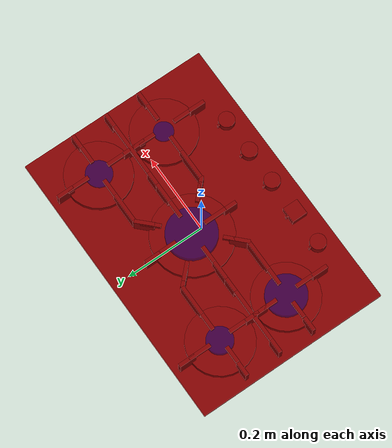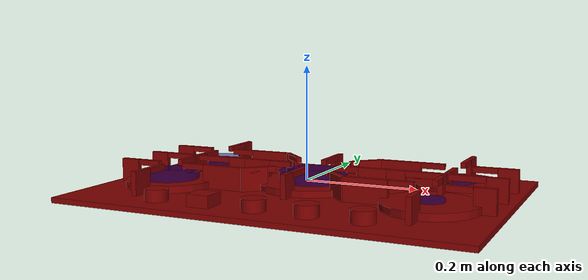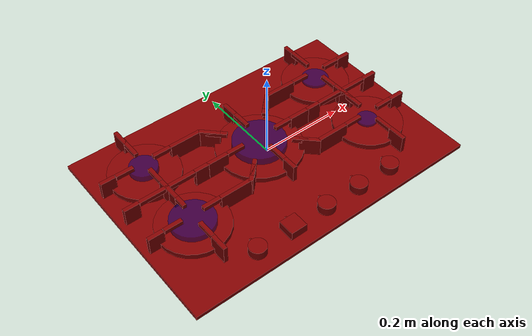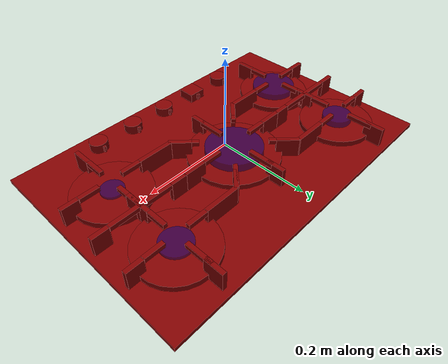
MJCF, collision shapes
<mujoco model="model">
  <compiler angle="radian"/>
  <asset>
    <mesh file="visuals/knob_center.obj" name="knob_center_vis"/>
    <mesh file="visuals/knob_front_left.obj" name="knob_front_left_vis"/>
    <mesh file="visuals/knob_front_right.obj" name="knob_front_right_vis"/>
    <mesh file="visuals/knob_rear_left.obj" name="knob_rear_left_vis"/>
    <mesh file="visuals/knob_rear_right.obj" name="knob_rear_right_vis"/>
    <mesh file="visuals/Body001.obj" name="Body001_vis"/>
    <texture file="visuals/T_BC001.png" name="Body001_material" type="2d"/>
    <material name="Body001_material" rgba="1 1 1 1.0" texture="Body001_material" shininess="0.4472135901451111" specular="0.3103448502657381"/>
    <texture file="visuals/T_BC001.png" name="knob_center_material" type="2d"/>
    <material name="knob_center_material" rgba="1 1 1 1.0" texture="knob_center_material" shininess="0.4472135901451111" specular="0.3103448502657381"/>
    <texture file="visuals/T_BC001.png" name="knob_front_left_material" type="2d"/>
    <material name="knob_front_left_material" rgba="1 1 1 1.0" texture="knob_front_left_material" shininess="0.4472135901451111" specular="0.3103448502657381"/>
    <texture file="visuals/T_BC001.png" name="knob_front_right_material" type="2d"/>
    <material name="knob_front_right_material" rgba="1 1 1 1.0" texture="knob_front_right_material" shininess="0.4472135901451111" specular="0.3103448502657381"/>
    <texture file="visuals/T_BC001.png" name="knob_rear_left_material" type="2d"/>
    <material name="knob_rear_left_material" rgba="1 1 1 1.0" texture="knob_rear_left_material" shininess="0.4472135901451111" specular="0.3103448502657381"/>
    <texture file="visuals/T_BC001.png" name="knob_rear_right_material" type="2d"/>
    <material name="knob_rear_right_material" rgba="1 1 1 1.0" texture="knob_rear_right_material" shininess="0.4472135901451111" specular="0.3103448502657381"/>
  </asset>
  <default>
    <default class="visual">
      <geom conaffinity="0" contype="0" group="1" type="mesh"/>
    </default>
    <default class="collision">
      <geom group="0" rgba="0.5 0 0 0.5"/>
    </default>
    <default class="spawn">
      <geom group="0" rgba="1 1 1 0.5" contype="0" conaffinity="0"/>
      <site group="0" rgba="1 1 1 0.5"/>
    </default>
    <default class="region">
      <geom group="1" conaffinity="0" contype="0" rgba="0 1 0 0"/>
    </default>
  </default>
  <worldbody>
    <body>
      <body name="object">
        <site type="cylinder" rgba="0 0 0.5 0.5" size="0.03237708657979965 0.007385991979390383" pos="0.24086588621139526 0.11679106950759888 -0.004593568854033947" name="burner_on_rear_right"/>
        <site type="cylinder" rgba="0 0 0.5 0.5" size="0.032153647392988205 0.010791282169520855" pos="-0.2402680665254593 0.11829595267772675 8.062110282480717e-05" name="burner_on_rear_left"/>
        <site type="cylinder" rgba="0 0 0.5 0.5" size="0.023979755118489265 0.007268097251653671" pos="0.24086588621139526 -0.06289083510637283 -0.005452632438391447" name="burner_on_front_right"/>
        <site type="cylinder" rgba="0 0 0.5 0.5" size="0.04967562109231949 0.011161739937961102" pos="-0.23990321159362793 -0.06442351639270782 -0.0005387067794799805" name="burner_on_front_left"/>
        <site type="cylinder" rgba="0 0 0.5 0.5" size="0.06138520687818527 0.012939141131937504" pos="0.000666438601911068 0.026685591787099838 0.00039261835627257824" name="burner_on_center"/>
        <geom mesh="Body001_vis" type="mesh" solimp="0.998 0.998 0.001" solref="0.001 1" density="100" friction="0.95 0.3 0.1" class="visual" material="Body001_material"/>
        <geom class="collision" type="box" pos="-9.830464841797948e-05 -0.0003039008006453514 -0.02075079455971718" size="0.3580070734024048 0.2431112825870514 0.004715105053037405" quat="1.0 0.0 0.0 0.0"/>
        <geom class="collision" type="cylinder" pos="-3.288944583346165e-07 0.025569269433617592 -0.012524622492492199" size="0.09963005036115646 0.008091187104582787" quat="1.0 0.0 0.0 0.0"/>
        <geom class="collision" type="cylinder" pos="0.2415129840373993 0.11791399121284485 -0.012549182400107384" size="0.08126886934041977 0.008932210505008698" quat="1.0 0.0 0.0 0.0"/>
        <geom class="collision" type="cylinder" pos="0.2415129840373993 -0.06415694952011108 -0.012549182400107384" size="0.08126886934041977 0.008932210505008698" quat="1.0 0.0 0.0 0.0"/>
        <geom class="collision" type="cylinder" pos="-0.2398865520954132 -0.06415694952011108 -0.012549182400107384" size="0.08126886934041977 0.008932210505008698" quat="1.0 0.0 0.0 0.0"/>
        <geom class="collision" type="cylinder" pos="-0.2398865520954132 0.1169244647026062 -0.012549182400107384" size="0.08126886934041977 0.008932210505008698" quat="1.0 0.0 0.0 0.0"/>
        <geom class="collision" type="box" pos="-0.06465915590524673 0.02649661898612976 0.02044524997472763" size="0.021438606083393097 0.004667441826313734 0.005042370408773422" quat="1.148381556959066e-06 1.0 0.0 0.0"/>
        <geom class="collision" type="box" pos="-0.11196483671665192 0.02649661898612976 0.0037999891210347414" size="0.0252254456281662 0.004667441826313734 0.02168763056397438" quat="1.148381556959066e-06 1.0 0.0 0.0"/>
        <geom class="collision" type="box" pos="-0.23905663192272186 0.02649661898612976 0.02044524997472763" size="0.0684458315372467 0.004667441826313734 0.005042370408773422" quat="1.148381556959066e-06 1.0 0.0 0.0"/>
        <geom class="collision" type="box" pos="-0.32604506611824036 0.02649661898612976 0.0037999891210347414" size="0.017900990322232246 0.004667441826313734 0.02168763056397438" quat="1.148381556959066e-06 1.0 0.0 0.0"/>
        <geom class="collision" type="box" pos="-0.3265019357204437 0.117610864341259 0.0037999891210347414" size="0.017900990322232246 0.004667441826313734 0.02168763056397438" quat="1.148381556959066e-06 1.0 0.0 0.0"/>
        <geom class="collision" type="box" pos="-0.32730668783187866 -0.0644533783197403 0.0037999891210347414" size="0.017900990322232246 0.004667441826313734 0.02168763056397438" quat="1.148381556959066e-06 1.0 0.0 0.0"/>
        <geom class="collision" type="box" pos="-0.1325003206729889 -0.0644533783197403 0.0037999891210347414" size="0.038536034524440765 0.004667441826313734 0.02168763056397438" quat="1.148381556959066e-06 1.0 0.0 0.0"/>
        <geom class="collision" type="box" pos="-0.28615280985832214 -0.06427094340324402 0.02044524997472763" size="0.021349649876356125 0.004667441826313734 0.005042370408773422" quat="1.148381556959066e-06 1.0 0.0 0.0"/>
        <geom class="collision" type="box" pos="-0.19278877973556519 -0.06427094340324402 0.02044524997472763" size="0.021349649876356125 0.004667441826313734 0.005042370408773422" quat="1.148381556959066e-06 1.0 0.0 0.0"/>
        <geom class="collision" type="box" pos="-0.15313535928726196 0.026583122089505196 0.0037999891210347414" size="0.017900990322232246 0.004667441826313734 0.02168763056397438" quat="1.148381556959066e-06 1.0 0.0 0.0"/>
        <geom class="collision" type="box" pos="-0.28615280985832214 0.11702211201190948 0.02044524997472763" size="0.021349649876356125 0.004667441826313734 0.005042370408773422" quat="1.148381556959066e-06 1.0 0.0 0.0"/>
        <geom class="collision" type="box" pos="-0.23989515006542206 -0.015830345451831818 0.02044524997472763" size="0.021349649876356125 0.004667441826313734 0.005042370408773422" quat="8.120283041535004e-07 0.7071067094802856 0.7071068286895752 8.120283609969192e-07"/>
        <geom class="collision" type="box" pos="-0.24031606316566467 0.008340489119291306 0.0037999891210347414" size="0.017900990322232246 0.004667441826313734 0.02168763056397438" quat="8.120283041535004e-07 0.7071067094802856 0.7071068286895752 8.120283609969192e-07"/>
        <geom class="collision" type="box" pos="-0.23989515006542206 0.17330193519592285 0.02044524997472763" size="0.028570206835865974 0.004667441826313734 0.005042370408773422" quat="8.120283041535004e-07 0.7071067094802856 0.7071068286895752 8.120283609969192e-07"/>
        <geom class="collision" type="box" pos="-0.24031606316566467 0.207902193069458 0.0037999891210347414" size="0.02110985293984413 0.004667441826313734 0.02168763056397438" quat="8.120283041535004e-07 0.7071067094802856 0.7071068286895752 8.120283609969192e-07"/>
        <geom class="collision" type="box" pos="-0.24031606316566467 0.03039761632680893 0.0037999891210347414" size="0.017900990322232246 0.004667441826313734 0.02168763056397438" quat="8.120283041535004e-07 0.7071067094802856 0.7071068286895752 8.120283609969192e-07"/>
        <geom class="collision" type="box" pos="-0.23989515006542206 0.07016509026288986 0.02044524997472763" size="0.021349649876356125 0.004667441826313734 0.005042370408773422" quat="8.120283041535004e-07 0.7071067094802856 0.7071068286895752 8.120283609969192e-07"/>
        <geom class="collision" type="box" pos="-0.23989515006542206 -0.1129288449883461 0.02044524997472763" size="0.021349649876356125 0.004667441826313734 0.005042370408773422" quat="8.120283041535004e-07 0.7071067094802856 0.7071068286895752 8.120283609969192e-07"/>
        <geom class="collision" type="box" pos="-0.24031606316566467 -0.15524569153785706 0.0037999891210347414" size="0.020450349897146225 0.004667441826313734 0.02168763056397438" quat="8.120283041535004e-07 0.7071067094802856 0.7071068286895752 8.120283609969192e-07"/>
        <geom class="collision" type="box" pos="-0.19278877973556519 0.11876196414232254 0.02044524997472763" size="0.021349649876356125 0.004667441826313734 0.005042370408773422" quat="1.148381556959066e-06 1.0 0.0 0.0"/>
        <geom class="collision" type="box" pos="-0.13265696167945862 0.11857953667640686 0.0037999891210347414" size="0.03837938234210014 0.004667441826313734 0.02168763056397438" quat="1.148381556959066e-06 1.0 0.0 0.0"/>
        <geom class="collision" type="box" pos="-0.07844720035791397 -0.05122492089867592 0.0037999891210347414" size="0.02375047467648983 0.004667442757636309 0.02168763056397438" quat="1.0627466053847456e-06 0.9254298806190491 0.37891894578933716 4.3514339154171466e-07"/>
        <geom class="collision" type="box" pos="-0.06760058552026749 -0.04055351763963699 0.02064891904592514" size="0.02375047467648983 0.004667442757636309 0.004838698077946901" quat="1.0627466053847456e-06 0.9254298806190491 0.37891894578933716 4.3514339154171466e-07"/>
        <geom class="collision" type="box" pos="-0.0676586925983429 0.09159226715564728 0.02064891904592514" size="0.02375047095119953 0.004667441826313734 0.004838698077946901" quat="1.0603743021420087e-06 0.9233641028404236 -0.3839253783226013 -4.408928475641005e-07"/>
        <geom class="collision" type="box" pos="-0.07838909327983856 0.10238052904605865 0.0037999891210347414" size="0.02375047095119953 0.004667441826313734 0.02168763056397438" quat="1.0603743021420087e-06 0.9233641028404236 -0.3839253783226013 -4.408928475641005e-07"/>
        <geom class="collision" type="box" pos="0.0008813887252472341 0.09859346598386765 0.02044524997472763" size="0.028570206835865974 0.004667441826313734 0.005042370408773422" quat="8.120283041535004e-07 0.7071067094802856 0.7071068286895752 8.120283609969192e-07"/>
        <geom class="collision" type="box" pos="0.00046047536307014525 0.1340765655040741 0.0037999891210347414" size="0.020227007567882538 0.004667441826313734 0.02168763056397438" quat="8.120283041535004e-07 0.7071067094802856 0.7071068286895752 8.120283609969192e-07"/>
        <geom class="collision" type="box" pos="0.0008813883177936077 -0.03828354924917221 0.02044524997472763" size="0.028570206835865974 0.004667441826313734 0.005042370408773422" quat="0.70710688829422 0.0 0.0 0.7071066498756409"/>
        <geom class="collision" type="box" pos="0.0004604760615620762 -0.0783400908112526 0.0037999888882040977" size="0.017148850485682487 0.004667441826313734 0.02168763056397438" quat="0.70710688829422 0.0 0.0 0.7071066498756409"/>
        <geom class="collision" type="box" pos="0.1936613917350769 0.11876196414232254 0.02044524997472763" size="0.021349649876356125 0.004667441826313734 0.005042370408773422" quat="1.0 0.0 0.0 0.0"/>
        <geom class="collision" type="box" pos="0.24076777696609497 -0.1129288375377655 0.02044524997472763" size="0.021349649876356125 0.004667441826313734 0.005042370408773422" quat="0.7071067094802856 0.0 0.0 -0.7071068286895752"/>
        <geom class="collision" type="box" pos="0.24076777696609497 0.07016509026288986 0.02044524997472763" size="0.021349649876356125 0.004667441826313734 0.005042370408773422" quat="0.7071067094802856 0.0 0.0 -0.7071068286895752"/>
        <geom class="collision" type="box" pos="0.24076777696609497 0.17330193519592285 0.02044524997472763" size="0.028570206835865974 0.004667441826313734 0.005042370408773422" quat="0.7071067094802856 0.0 0.0 -0.7071068286895752"/>
        <geom class="collision" type="box" pos="0.24076777696609497 -0.015830345451831818 0.02044524997472763" size="0.021349649876356125 0.004667441826313734 0.005042370408773422" quat="0.7071067094802856 0.0 0.0 -0.7071068286895752"/>
        <geom class="collision" type="box" pos="0.28702542185783386 0.11702211201190948 0.02044524997472763" size="0.021349649876356125 0.004667441826313734 0.005042370408773422" quat="1.0 0.0 0.0 0.0"/>
        <geom class="collision" type="box" pos="0.1936613917350769 -0.06427094340324402 0.02044524997472763" size="0.021349649876356125 0.004667441826313734 0.005042370408773422" quat="1.0 0.0 0.0 0.0"/>
        <geom class="collision" type="box" pos="0.28702542185783386 -0.06427094340324402 0.02044524997472763" size="0.021349649876356125 0.004667441826313734 0.005042370408773422" quat="1.0 0.0 0.0 0.0"/>
        <geom class="collision" type="box" pos="0.23992924392223358 0.02649661898612976 0.02044524997472763" size="0.0684458315372467 0.004667441826313734 0.005042370408773422" quat="1.0 0.0 0.0 0.0"/>
        <geom class="collision" type="box" pos="0.06553176045417786 0.02649661898612976 0.02044524997472763" size="0.021438606083393097 0.004667441826313734 0.005042370408773422" quat="1.0 0.0 0.0 0.0"/>
        <geom class="collision" type="box" pos="0.07888656109571457 0.10275367647409439 0.0037999888882040977" size="0.02375047467648983 0.004667442757636309 0.02168763056397438" quat="0.9233641028404236 0.0 0.0 0.3839253783226013"/>
        <geom class="collision" type="box" pos="0.0677771270275116 0.09234239906072617 0.02064891904592514" size="0.02375047467648983 0.004667442757636309 0.004838698077946901" quat="0.9233641028404236 0.0 0.0 0.3839253783226013"/>
        <geom class="collision" type="box" pos="0.06847319006919861 -0.04055351763963699 0.02064891904592514" size="0.02375047467648983 0.004667442757636309 0.004838698077946901" quat="0.9254298210144043 0.0 0.0 -0.3789190649986267"/>
        <geom class="collision" type="box" pos="0.07931980490684509 -0.05122491717338562 0.0037999888882040977" size="0.02375047467648983 0.004667442757636309 0.02168763056397438" quat="0.9254298210144043 0.0 0.0 -0.3789190649986267"/>
        <geom class="collision" type="box" pos="0.13352957367897034 0.11857953667640686 0.0037999888882040977" size="0.03837938234210014 0.004667441826313734 0.02168763056397438" quat="1.0 0.0 0.0 0.0"/>
        <geom class="collision" type="box" pos="0.2411886751651764 -0.15524569153785706 0.0037999888882040977" size="0.020450349897146225 0.004667441826313734 0.02168763056397438" quat="0.7071067094802856 0.0 0.0 -0.7071068286895752"/>
        <geom class="collision" type="box" pos="0.2411886751651764 0.03039761632680893 0.0037999888882040977" size="0.017900990322232246 0.004667441826313734 0.02168763056397438" quat="0.7071067094802856 0.0 0.0 -0.7071068286895752"/>
        <geom class="collision" type="box" pos="0.2411886751651764 0.207902193069458 0.0037999888882040977" size="0.02110985293984413 0.004667441826313734 0.02168763056397438" quat="0.7071067094802856 0.0 0.0 -0.7071068286895752"/>
        <geom class="collision" type="box" pos="0.2411886751651764 0.008340489119291306 0.0037999888882040977" size="0.017900990322232246 0.004667441826313734 0.02168763056397438" quat="0.7071067094802856 0.0 0.0 -0.7071068286895752"/>
        <geom class="collision" type="box" pos="0.15400797128677368 0.026583122089505196 0.0037999888882040977" size="0.017900990322232246 0.004667441826313734 0.02168763056397438" quat="1.0 0.0 0.0 0.0"/>
        <geom class="collision" type="box" pos="0.1333729326725006 -0.0644533783197403 0.0037999888882040977" size="0.038536034524440765 0.004667441826313734 0.02168763056397438" quat="1.0 0.0 0.0 0.0"/>
        <geom class="collision" type="box" pos="0.3269176781177521 -0.0644533783197403 0.0037999888882040977" size="0.017900990322232246 0.004667441826313734 0.02168763056397438" quat="1.0 0.0 0.0 0.0"/>
        <geom class="collision" type="box" pos="0.3269176781177521 0.117610864341259 0.0037999888882040977" size="0.017900990322232246 0.004667441826313734 0.02168763056397438" quat="1.0 0.0 0.0 0.0"/>
        <geom class="collision" type="box" pos="0.3269176781177521 0.02649661898612976 0.0037999888882040977" size="0.017900990322232246 0.004667441826313734 0.02168763056397438" quat="1.0 0.0 0.0 0.0"/>
        <geom class="collision" type="box" pos="0.11283743381500244 0.02649661898612976 0.0037999888882040977" size="0.0252254456281662 0.004667441826313734 0.02168763056397438" quat="1.0 0.0 0.0 0.0"/>
        <body name="knob_center">
          <joint axis="0.0 0.0 1.0" pos="0.0005907976301386952 -0.19658273458480835 -0.002788151614367962" limited="true" name="knob_center_joint" range="0.0 3.6651914291880923" type="hinge" damping="0.05" armature="0.001" springref="-0.1"/>
          <geom mesh="knob_center_vis" type="mesh" solimp="0.998 0.998 0.001" solref="0.001 1" density="100" friction="0.95 0.3 0.1" class="visual" material="knob_center_material"/>
          <geom class="collision" type="cylinder" pos="0.0005165048642084002 -0.19679957628250122 -0.0034947337117046118" size="0.019707543775439262 0.010230637155473232" quat="1.0 0.0 0.0 0.0"/>
          <geom class="collision" type="box" pos="0.0008079101098701358 -0.1778692901134491 -0.003822165075689554" size="0.0019747947808355093 0.006169247906655073 0.007219460792839527" quat="1.0 0.0 0.0 0.0"/>
        </body>
        <body name="knob_front_left">
          <joint axis="0.0 0.0 1.0" pos="-0.17885366082191467 -0.19658273458480835 -0.002788151614367962" limited="true" name="knob_front_left_joint" range="0.0 3.6651914291880923" type="hinge" damping="0.05" armature="0.001" springref="-0.1"/>
          <geom mesh="knob_front_left_vis" type="mesh" solimp="0.998 0.998 0.001" solref="0.001 1" density="100" friction="0.95 0.3 0.1" class="visual" material="knob_front_left_material"/>
          <geom class="collision" type="box" pos="-0.17842736840248108 -0.1778692901134491 -0.003822165075689554" size="0.0019747947808355093 0.006169247906655073 0.007219460792839527" quat="1.0 0.0 0.0 0.0"/>
          <geom class="collision" type="cylinder" pos="-0.17871877551078796 -0.19679957628250122 -0.0034947337117046118" size="0.019707543775439262 0.010230637155473232" quat="1.0 0.0 0.0 0.0"/>
        </body>
        <body name="knob_front_right">
          <joint axis="0.0 0.0 1.0" pos="0.1800352931022644 -0.19658273458480835 -0.002788151614367962" limited="true" name="knob_front_right_joint" range="0.0 3.6651914291880923" type="hinge" damping="0.05" armature="0.001" springref="-0.1"/>
          <geom mesh="knob_front_right_vis" type="mesh" solimp="0.998 0.998 0.001" solref="0.001 1" density="100" friction="0.95 0.3 0.1" class="visual" material="knob_front_right_material"/>
          <geom class="collision" type="box" pos="0.1804182082414627 -0.1778692901134491 -0.003822165075689554" size="0.0019747947808355093 0.006169247906655073 0.007219460792839527" quat="1.0 0.0 0.0 0.0"/>
          <geom class="collision" type="cylinder" pos="0.18012680113315582 -0.19679957628250122 -0.0034947337117046118" size="0.019707543775439262 0.010230637155473232" quat="1.0 0.0 0.0 0.0"/>
        </body>
        <body name="knob_rear_left">
          <joint axis="0.0 0.0 1.0" pos="-0.08913145214319229 -0.19658273458480835 -0.002788151614367962" limited="true" name="knob_rear_left_joint" range="0.0 3.6651914291880923" type="hinge" damping="0.05" armature="0.001" springref="-0.1"/>
          <geom mesh="knob_rear_left_vis" type="mesh" solimp="0.998 0.998 0.001" solref="0.001 1" density="100" friction="0.95 0.3 0.1" class="visual" material="knob_rear_left_material"/>
          <geom class="collision" type="box" pos="-0.08852341026067734 -0.1778692901134491 -0.003822165075689554" size="0.0019747947808355093 0.006169247906655073 0.007219460792839527" quat="1.0 0.0 0.0 0.0"/>
          <geom class="collision" type="box" pos="-0.08881481736898422 -0.19679957628250122 -0.0034947337117046118" size="0.019707543775439262 0.019707543775439262 0.010230637155473232" quat="1.0 0.0 0.0 0.0"/>
        </body>
        <body name="knob_rear_right">
          <joint axis="0.0 0.0 1.0" pos="0.09031304717063904 -0.19658273458480835 -0.002788151614367962" limited="true" name="knob_rear_right_joint" range="0.0 3.6651914291880923" type="hinge" damping="0.05" armature="0.001" springref="-0.1"/>
          <geom mesh="knob_rear_right_vis" type="mesh" solimp="0.998 0.998 0.001" solref="0.001 1" density="100" friction="0.95 0.3 0.1" class="visual" material="knob_rear_right_material"/>
          <geom class="collision" type="box" pos="0.0904315635561943 -0.1778692901134491 -0.003822165075689554" size="0.0019747947808355093 0.006169247906655073 0.007219460792839527" quat="1.0 0.0 0.0 0.0"/>
          <geom class="collision" type="cylinder" pos="0.09014015644788742 -0.19679957628250122 -0.0034947337117046118" size="0.019707543775439262 0.010230637155473232" quat="1.0 0.0 0.0 0.0"/>
        </body>
        <geom class="region" name="reg_main" type="box" pos="7.450580596923828e-09 0.0 -0.01957455277442932" size="0.3557778298854828 0.24201413989067078 0.005348745733499527"/>
      </body>
    </body>
  </worldbody>
  <actuator>
    <motor name="knob_center_joint_actuator" joint="knob_center_joint" gear="10"/>
    <motor name="knob_front_left_joint_actuator" joint="knob_front_left_joint" gear="10"/>
    <motor name="knob_front_right_joint_actuator" joint="knob_front_right_joint" gear="10"/>
    <motor name="knob_rear_left_joint_actuator" joint="knob_rear_left_joint" gear="10"/>
    <motor name="knob_rear_right_joint_actuator" joint="knob_rear_right_joint" gear="10"/>
  </actuator>
</mujoco>
